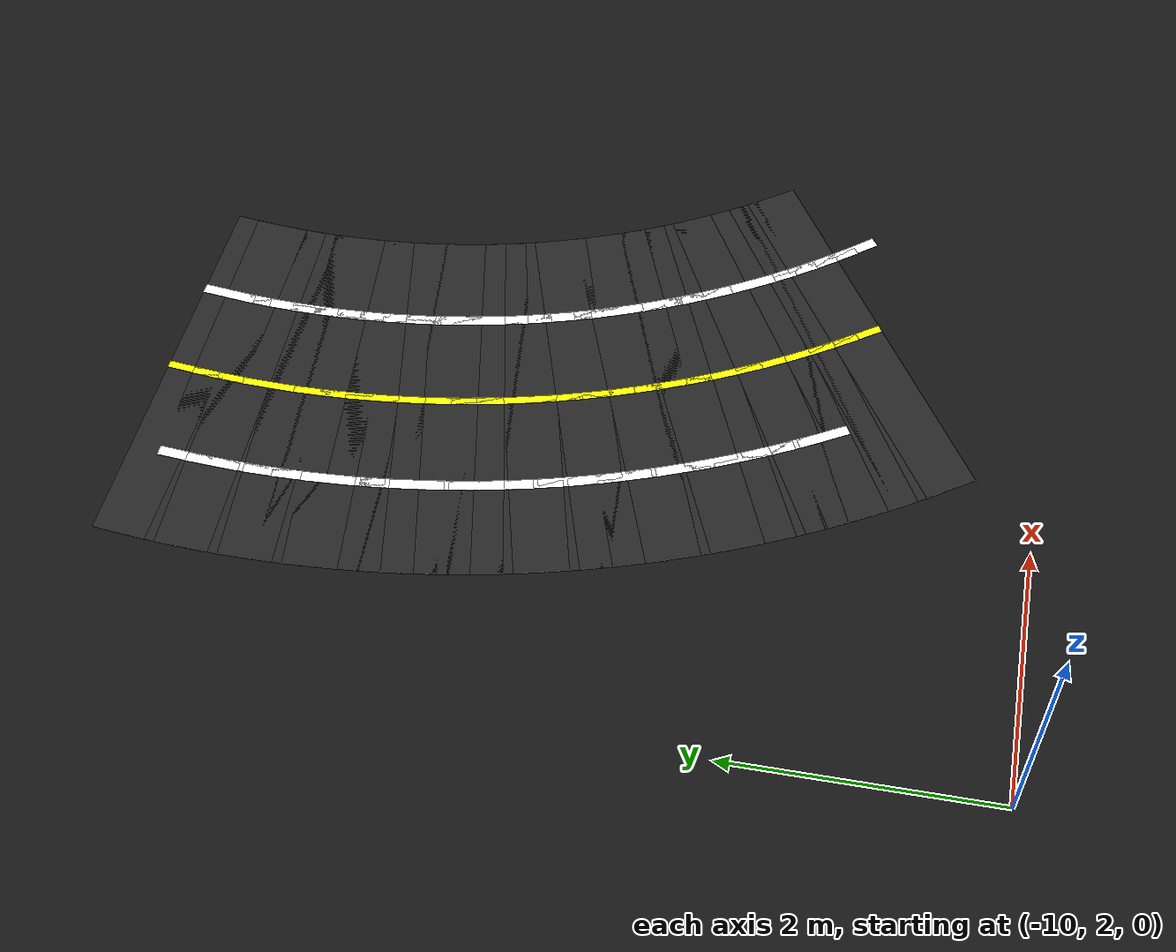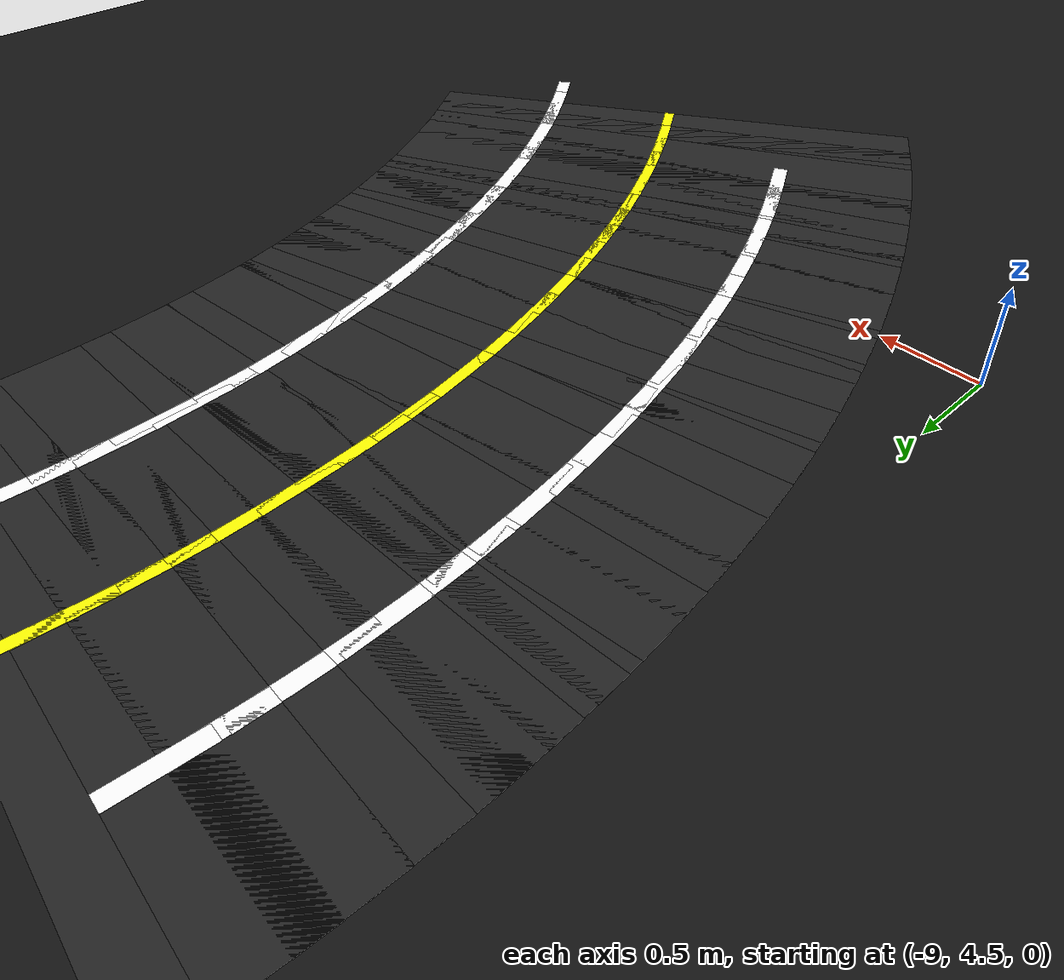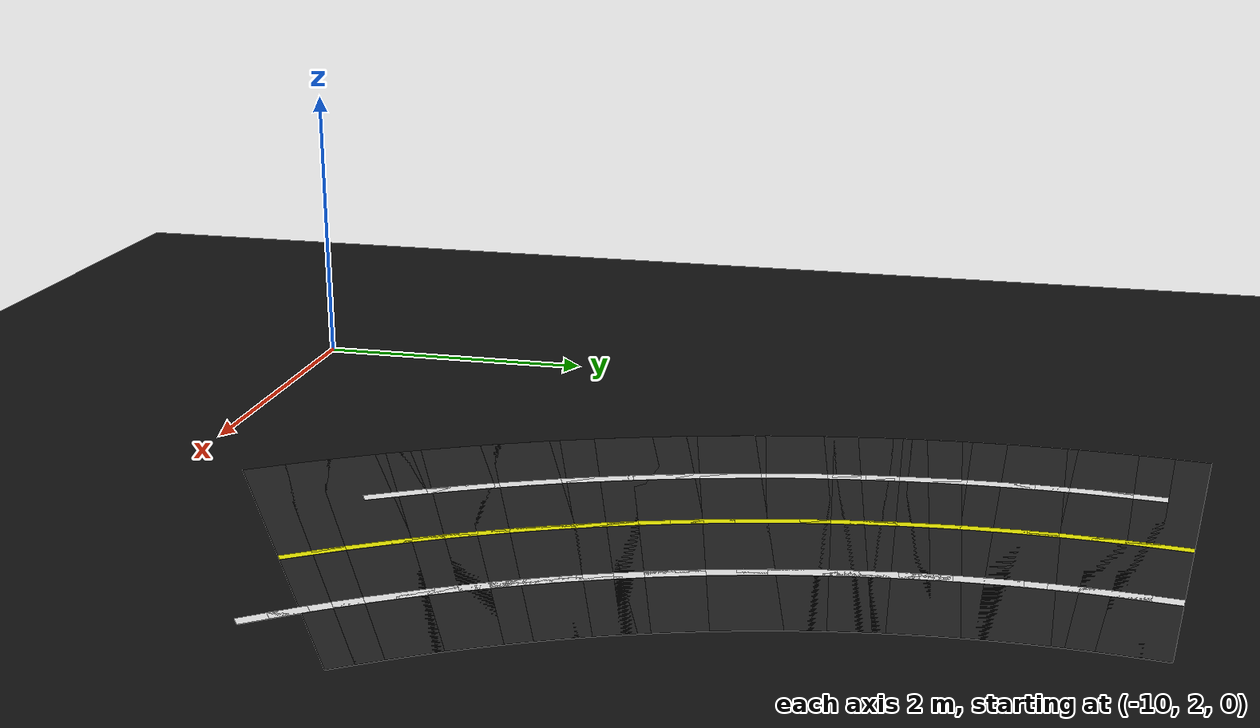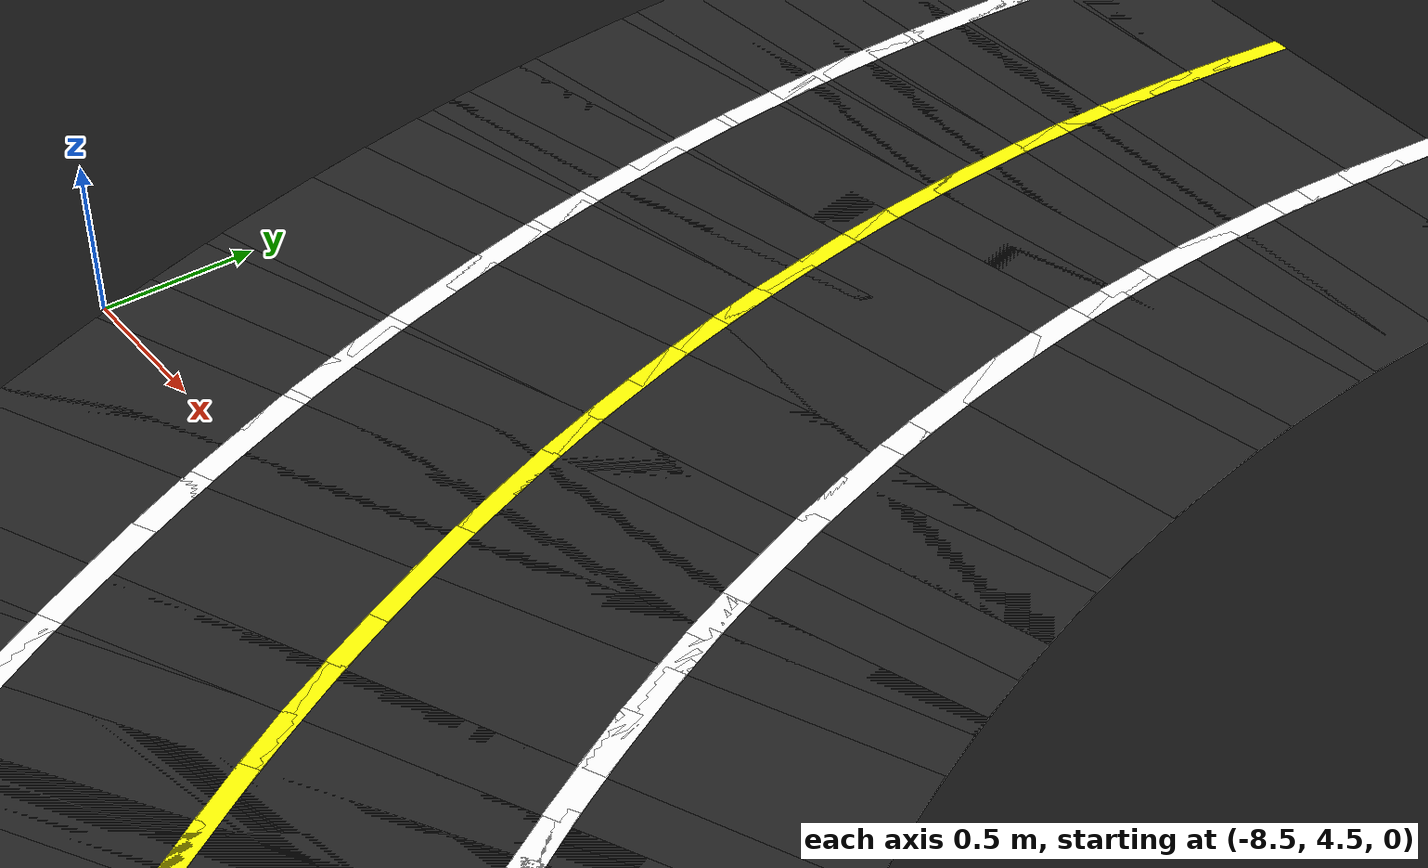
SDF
<sdf version="1.6">
 <world name="figure8_world">
  <model name="ground_plane">
   <static>true</static>
   <link name="link">
    <collision name="collision">
     <geometry><plane><normal>0 0 1</normal><size>120 120</size></plane></geometry>
    </collision>
    <visual name="visual">
     <geometry><plane><normal>0 0 1</normal><size>120 120</size></plane></geometry>
     <material><ambient>0.08 0.08 0.08 1</ambient><diffuse>0.08 0.08 0.08 1</diffuse></material>
    </visual>
   </link>
  </model>
  <model name="seg_00464">
   <static>true</static>
   <pose>-7.4589 8.2840 0.0010 0 0 4.6077</pose>
   <link name="link">
    <collision name="collision"><geometry><box><size>0.4000 3.0000 0.002</size></box></geometry></collision>
    <visual name="visual">
     <geometry><box><size>0.4000 3.0000 0.002</size></box></geometry>
     <material><ambient>0.14 0.14 0.14 1</ambient><diffuse>0.14 0.14 0.14 1</diffuse></material>
    </visual>
   </link>
  </model>
  <model name="seg_00466">
   <static>true</static>
   <pose>-6.7130 8.2056 0.0030 0 0 4.6077</pose>
   <link name="link">
    <collision name="collision"><geometry><box><size>0.4000 0.0800 0.002</size></box></geometry></collision>
    <visual name="visual">
     <geometry><box><size>0.4000 0.0800 0.002</size></box></geometry>
     <material><ambient>1 1 1 1</ambient><diffuse>1 1 1 1</diffuse></material>
    </visual>
   </link>
  </model>
  <model name="seg_00467">
   <static>true</static>
   <pose>-7.4589 8.2840 0.0030 0 0 4.6077</pose>
   <link name="link">
    <collision name="collision"><geometry><box><size>0.4000 0.0600 0.002</size></box></geometry></collision>
    <visual name="visual">
     <geometry><box><size>0.4000 0.0600 0.002</size></box></geometry>
     <material><ambient>1 1 0 1</ambient><diffuse>1 1 0 1</diffuse></material>
    </visual>
   </link>
  </model>
  <model name="seg_00468">
   <static>true</static>
   <pose>-7.4769 8.0884 0.0010 0 0 4.6338</pose>
   <link name="link">
    <collision name="collision"><geometry><box><size>0.4000 3.0000 0.002</size></box></geometry></collision>
    <visual name="visual">
     <geometry><box><size>0.4000 3.0000 0.002</size></box></geometry>
     <material><ambient>0.14 0.14 0.14 1</ambient><diffuse>0.14 0.14 0.14 1</diffuse></material>
    </visual>
   </link>
  </model>
  <model name="seg_00469">
   <static>true</static>
   <pose>-8.2246 8.1473 0.0030 0 0 4.6338</pose>
   <link name="link">
    <collision name="collision"><geometry><box><size>0.4000 0.0800 0.002</size></box></geometry></collision>
    <visual name="visual">
     <geometry><box><size>0.4000 0.0800 0.002</size></box></geometry>
     <material><ambient>1 1 1 1</ambient><diffuse>1 1 1 1</diffuse></material>
    </visual>
   </link>
  </model>
  <model name="seg_00470">
   <static>true</static>
   <pose>-6.7292 8.0296 0.0030 0 0 4.6338</pose>
   <link name="link">
    <collision name="collision"><geometry><box><size>0.4000 0.0800 0.002</size></box></geometry></collision>
    <visual name="visual">
     <geometry><box><size>0.4000 0.0800 0.002</size></box></geometry>
     <material><ambient>1 1 1 1</ambient><diffuse>1 1 1 1</diffuse></material>
    </visual>
   </link>
  </model>
  <model name="seg_00471">
   <static>true</static>
   <pose>-7.4769 8.0884 0.0030 0 0 4.6338</pose>
   <link name="link">
    <collision name="collision"><geometry><box><size>0.4000 0.0600 0.002</size></box></geometry></collision>
    <visual name="visual">
     <geometry><box><size>0.4000 0.0600 0.002</size></box></geometry>
     <material><ambient>1 1 0 1</ambient><diffuse>1 1 0 1</diffuse></material>
    </visual>
   </link>
  </model>
  <model name="seg_00472">
   <static>true</static>
   <pose>-7.4897 7.8925 0.0010 0 0 4.6600</pose>
   <link name="link">
    <collision name="collision"><geometry><box><size>0.4000 3.0000 0.002</size></box></geometry></collision>
    <visual name="visual">
     <geometry><box><size>0.4000 3.0000 0.002</size></box></geometry>
     <material><ambient>0.14 0.14 0.14 1</ambient><diffuse>0.14 0.14 0.14 1</diffuse></material>
    </visual>
   </link>
  </model>
  <model name="seg_00473">
   <static>true</static>
   <pose>-8.2387 7.9318 0.0030 0 0 4.6600</pose>
   <link name="link">
    <collision name="collision"><geometry><box><size>0.4000 0.0800 0.002</size></box></geometry></collision>
    <visual name="visual">
     <geometry><box><size>0.4000 0.0800 0.002</size></box></geometry>
     <material><ambient>1 1 1 1</ambient><diffuse>1 1 1 1</diffuse></material>
    </visual>
   </link>
  </model>
  <model name="seg_00474">
   <static>true</static>
   <pose>-6.7407 7.8533 0.0030 0 0 4.6600</pose>
   <link name="link">
    <collision name="collision"><geometry><box><size>0.4000 0.0800 0.002</size></box></geometry></collision>
    <visual name="visual">
     <geometry><box><size>0.4000 0.0800 0.002</size></box></geometry>
     <material><ambient>1 1 1 1</ambient><diffuse>1 1 1 1</diffuse></material>
    </visual>
   </link>
  </model>
  <model name="seg_00475">
   <static>true</static>
   <pose>-7.4897 7.8925 0.0030 0 0 4.6600</pose>
   <link name="link">
    <collision name="collision"><geometry><box><size>0.4000 0.0600 0.002</size></box></geometry></collision>
    <visual name="visual">
     <geometry><box><size>0.4000 0.0600 0.002</size></box></geometry>
     <material><ambient>1 1 0 1</ambient><diffuse>1 1 0 1</diffuse></material>
    </visual>
   </link>
  </model>
  <model name="seg_00476">
   <static>true</static>
   <pose>-7.4974 7.6963 0.0010 0 0 4.6862</pose>
   <link name="link">
    <collision name="collision"><geometry><box><size>0.4000 3.0000 0.002</size></box></geometry></collision>
    <visual name="visual">
     <geometry><box><size>0.4000 3.0000 0.002</size></box></geometry>
     <material><ambient>0.14 0.14 0.14 1</ambient><diffuse>0.14 0.14 0.14 1</diffuse></material>
    </visual>
   </link>
  </model>
  <model name="seg_00477">
   <static>true</static>
   <pose>-8.2472 7.7160 0.0030 0 0 4.6862</pose>
   <link name="link">
    <collision name="collision"><geometry><box><size>0.4000 0.0800 0.002</size></box></geometry></collision>
    <visual name="visual">
     <geometry><box><size>0.4000 0.0800 0.002</size></box></geometry>
     <material><ambient>1 1 1 1</ambient><diffuse>1 1 1 1</diffuse></material>
    </visual>
   </link>
  </model>
  <model name="seg_00478">
   <static>true</static>
   <pose>-6.7477 7.6767 0.0030 0 0 4.6862</pose>
   <link name="link">
    <collision name="collision"><geometry><box><size>0.4000 0.0800 0.002</size></box></geometry></collision>
    <visual name="visual">
     <geometry><box><size>0.4000 0.0800 0.002</size></box></geometry>
     <material><ambient>1 1 1 1</ambient><diffuse>1 1 1 1</diffuse></material>
    </visual>
   </link>
  </model>
  <model name="seg_00479">
   <static>true</static>
   <pose>-7.4974 7.6963 0.0030 0 0 4.6862</pose>
   <link name="link">
    <collision name="collision"><geometry><box><size>0.4000 0.0600 0.002</size></box></geometry></collision>
    <visual name="visual">
     <geometry><box><size>0.4000 0.0600 0.002</size></box></geometry>
     <material><ambient>1 1 0 1</ambient><diffuse>1 1 0 1</diffuse></material>
    </visual>
   </link>
  </model>
  <model name="seg_00480">
   <static>true</static>
   <pose>-7.5000 7.5000 0.0010 0 0 4.7124</pose>
   <link name="link">
    <collision name="collision"><geometry><box><size>0.4000 3.0000 0.002</size></box></geometry></collision>
    <visual name="visual">
     <geometry><box><size>0.4000 3.0000 0.002</size></box></geometry>
     <material><ambient>0.14 0.14 0.14 1</ambient><diffuse>0.14 0.14 0.14 1</diffuse></material>
    </visual>
   </link>
  </model>
  <model name="seg_00481">
   <static>true</static>
   <pose>-8.2500 7.5000 0.0030 0 0 4.7124</pose>
   <link name="link">
    <collision name="collision"><geometry><box><size>0.4000 0.0800 0.002</size></box></geometry></collision>
    <visual name="visual">
     <geometry><box><size>0.4000 0.0800 0.002</size></box></geometry>
     <material><ambient>1 1 1 1</ambient><diffuse>1 1 1 1</diffuse></material>
    </visual>
   </link>
  </model>
  <model name="seg_00482">
   <static>true</static>
   <pose>-6.7500 7.5000 0.0030 0 0 4.7124</pose>
   <link name="link">
    <collision name="collision"><geometry><box><size>0.4000 0.0800 0.002</size></box></geometry></collision>
    <visual name="visual">
     <geometry><box><size>0.4000 0.0800 0.002</size></box></geometry>
     <material><ambient>1 1 1 1</ambient><diffuse>1 1 1 1</diffuse></material>
    </visual>
   </link>
  </model>
  <model name="seg_00483">
   <static>true</static>
   <pose>-7.5000 7.5000 0.0030 0 0 4.7124</pose>
   <link name="link">
    <collision name="collision"><geometry><box><size>0.4000 0.0600 0.002</size></box></geometry></collision>
    <visual name="visual">
     <geometry><box><size>0.4000 0.0600 0.002</size></box></geometry>
     <material><ambient>1 1 0 1</ambient><diffuse>1 1 0 1</diffuse></material>
    </visual>
   </link>
  </model>
  <model name="seg_00484">
   <static>true</static>
   <pose>-7.4974 7.3037 0.0010 0 0 4.7386</pose>
   <link name="link">
    <collision name="collision"><geometry><box><size>0.4000 3.0000 0.002</size></box></geometry></collision>
    <visual name="visual">
     <geometry><box><size>0.4000 3.0000 0.002</size></box></geometry>
     <material><ambient>0.14 0.14 0.14 1</ambient><diffuse>0.14 0.14 0.14 1</diffuse></material>
    </visual>
   </link>
  </model>
  <model name="seg_00485">
   <static>true</static>
   <pose>-8.2472 7.2840 0.0030 0 0 4.7386</pose>
   <link name="link">
    <collision name="collision"><geometry><box><size>0.4000 0.0800 0.002</size></box></geometry></collision>
    <visual name="visual">
     <geometry><box><size>0.4000 0.0800 0.002</size></box></geometry>
     <material><ambient>1 1 1 1</ambient><diffuse>1 1 1 1</diffuse></material>
    </visual>
   </link>
  </model>
  <model name="seg_00486">
   <static>true</static>
   <pose>-6.7477 7.3233 0.0030 0 0 4.7386</pose>
   <link name="link">
    <collision name="collision"><geometry><box><size>0.4000 0.0800 0.002</size></box></geometry></collision>
    <visual name="visual">
     <geometry><box><size>0.4000 0.0800 0.002</size></box></geometry>
     <material><ambient>1 1 1 1</ambient><diffuse>1 1 1 1</diffuse></material>
    </visual>
   </link>
  </model>
  <model name="seg_00487">
   <static>true</static>
   <pose>-7.4974 7.3037 0.0030 0 0 4.7386</pose>
   <link name="link">
    <collision name="collision"><geometry><box><size>0.4000 0.0600 0.002</size></box></geometry></collision>
    <visual name="visual">
     <geometry><box><size>0.4000 0.0600 0.002</size></box></geometry>
     <material><ambient>1 1 0 1</ambient><diffuse>1 1 0 1</diffuse></material>
    </visual>
   </link>
  </model>
  <model name="seg_00488">
   <static>true</static>
   <pose>-7.4897 7.1075 0.0010 0 0 4.7647</pose>
   <link name="link">
    <collision name="collision"><geometry><box><size>0.4000 3.0000 0.002</size></box></geometry></collision>
    <visual name="visual">
     <geometry><box><size>0.4000 3.0000 0.002</size></box></geometry>
     <material><ambient>0.14 0.14 0.14 1</ambient><diffuse>0.14 0.14 0.14 1</diffuse></material>
    </visual>
   </link>
  </model>
  <model name="seg_00489">
   <static>true</static>
   <pose>-8.2387 7.0682 0.0030 0 0 4.7647</pose>
   <link name="link">
    <collision name="collision"><geometry><box><size>0.4000 0.0800 0.002</size></box></geometry></collision>
    <visual name="visual">
     <geometry><box><size>0.4000 0.0800 0.002</size></box></geometry>
     <material><ambient>1 1 1 1</ambient><diffuse>1 1 1 1</diffuse></material>
    </visual>
   </link>
  </model>
  <model name="seg_00490">
   <static>true</static>
   <pose>-6.7407 7.1467 0.0030 0 0 4.7647</pose>
   <link name="link">
    <collision name="collision"><geometry><box><size>0.4000 0.0800 0.002</size></box></geometry></collision>
    <visual name="visual">
     <geometry><box><size>0.4000 0.0800 0.002</size></box></geometry>
     <material><ambient>1 1 1 1</ambient><diffuse>1 1 1 1</diffuse></material>
    </visual>
   </link>
  </model>
  <model name="seg_00491">
   <static>true</static>
   <pose>-7.4897 7.1075 0.0030 0 0 4.7647</pose>
   <link name="link">
    <collision name="collision"><geometry><box><size>0.4000 0.0600 0.002</size></box></geometry></collision>
    <visual name="visual">
     <geometry><box><size>0.4000 0.0600 0.002</size></box></geometry>
     <material><ambient>1 1 0 1</ambient><diffuse>1 1 0 1</diffuse></material>
    </visual>
   </link>
  </model>
  <model name="seg_00492">
   <static>true</static>
   <pose>-7.4769 6.9116 0.0010 0 0 4.7909</pose>
   <link name="link">
    <collision name="collision"><geometry><box><size>0.4000 3.0000 0.002</size></box></geometry></collision>
    <visual name="visual">
     <geometry><box><size>0.4000 3.0000 0.002</size></box></geometry>
     <material><ambient>0.14 0.14 0.14 1</ambient><diffuse>0.14 0.14 0.14 1</diffuse></material>
    </visual>
   </link>
  </model>
  <model name="seg_00493">
   <static>true</static>
   <pose>-8.2246 6.8527 0.0030 0 0 4.7909</pose>
   <link name="link">
    <collision name="collision"><geometry><box><size>0.4000 0.0800 0.002</size></box></geometry></collision>
    <visual name="visual">
     <geometry><box><size>0.4000 0.0800 0.002</size></box></geometry>
     <material><ambient>1 1 1 1</ambient><diffuse>1 1 1 1</diffuse></material>
    </visual>
   </link>
  </model>
  <model name="seg_00494">
   <static>true</static>
   <pose>-6.7292 6.9704 0.0030 0 0 4.7909</pose>
   <link name="link">
    <collision name="collision"><geometry><box><size>0.4000 0.0800 0.002</size></box></geometry></collision>
    <visual name="visual">
     <geometry><box><size>0.4000 0.0800 0.002</size></box></geometry>
     <material><ambient>1 1 1 1</ambient><diffuse>1 1 1 1</diffuse></material>
    </visual>
   </link>
  </model>
  <model name="seg_00495">
   <static>true</static>
   <pose>-7.4769 6.9116 0.0030 0 0 4.7909</pose>
   <link name="link">
    <collision name="collision"><geometry><box><size>0.4000 0.0600 0.002</size></box></geometry></collision>
    <visual name="visual">
     <geometry><box><size>0.4000 0.0600 0.002</size></box></geometry>
     <material><ambient>1 1 0 1</ambient><diffuse>1 1 0 1</diffuse></material>
    </visual>
   </link>
  </model>
  <model name="seg_00496">
   <static>true</static>
   <pose>-7.4589 6.7160 0.0010 0 0 4.8171</pose>
   <link name="link">
    <collision name="collision"><geometry><box><size>0.4000 3.0000 0.002</size></box></geometry></collision>
    <visual name="visual">
     <geometry><box><size>0.4000 3.0000 0.002</size></box></geometry>
     <material><ambient>0.14 0.14 0.14 1</ambient><diffuse>0.14 0.14 0.14 1</diffuse></material>
    </visual>
   </link>
  </model>
  <model name="seg_00497">
   <static>true</static>
   <pose>-8.2048 6.6376 0.0030 0 0 4.8171</pose>
   <link name="link">
    <collision name="collision"><geometry><box><size>0.4000 0.0800 0.002</size></box></geometry></collision>
    <visual name="visual">
     <geometry><box><size>0.4000 0.0800 0.002</size></box></geometry>
     <material><ambient>1 1 1 1</ambient><diffuse>1 1 1 1</diffuse></material>
    </visual>
   </link>
  </model>
  <model name="seg_00498">
   <static>true</static>
   <pose>-6.7130 6.7944 0.0030 0 0 4.8171</pose>
   <link name="link">
    <collision name="collision"><geometry><box><size>0.4000 0.0800 0.002</size></box></geometry></collision>
    <visual name="visual">
     <geometry><box><size>0.4000 0.0800 0.002</size></box></geometry>
     <material><ambient>1 1 1 1</ambient><diffuse>1 1 1 1</diffuse></material>
    </visual>
   </link>
  </model>
  <model name="seg_00499">
   <static>true</static>
   <pose>-7.4589 6.7160 0.0030 0 0 4.8171</pose>
   <link name="link">
    <collision name="collision"><geometry><box><size>0.4000 0.0600 0.002</size></box></geometry></collision>
    <visual name="visual">
     <geometry><box><size>0.4000 0.0600 0.002</size></box></geometry>
     <material><ambient>1 1 0 1</ambient><diffuse>1 1 0 1</diffuse></material>
    </visual>
   </link>
  </model>
  <model name="seg_00500">
   <static>true</static>
   <pose>-7.4358 6.5211 0.0010 0 0 4.8433</pose>
   <link name="link">
    <collision name="collision"><geometry><box><size>0.4000 3.0000 0.002</size></box></geometry></collision>
    <visual name="visual">
     <geometry><box><size>0.4000 3.0000 0.002</size></box></geometry>
     <material><ambient>0.14 0.14 0.14 1</ambient><diffuse>0.14 0.14 0.14 1</diffuse></material>
    </visual>
   </link>
  </model>
  <model name="seg_00501">
   <static>true</static>
   <pose>-8.1794 6.4232 0.0030 0 0 4.8433</pose>
   <link name="link">
    <collision name="collision"><geometry><box><size>0.4000 0.0800 0.002</size></box></geometry></collision>
    <visual name="visual">
     <geometry><box><size>0.4000 0.0800 0.002</size></box></geometry>
     <material><ambient>1 1 1 1</ambient><diffuse>1 1 1 1</diffuse></material>
    </visual>
   </link>
  </model>
  <model name="seg_00502">
   <static>true</static>
   <pose>-6.6923 6.6189 0.0030 0 0 4.8433</pose>
   <link name="link">
    <collision name="collision"><geometry><box><size>0.4000 0.0800 0.002</size></box></geometry></collision>
    <visual name="visual">
     <geometry><box><size>0.4000 0.0800 0.002</size></box></geometry>
     <material><ambient>1 1 1 1</ambient><diffuse>1 1 1 1</diffuse></material>
    </visual>
   </link>
  </model>
  <model name="seg_00503">
   <static>true</static>
   <pose>-7.4358 6.5211 0.0030 0 0 4.8433</pose>
   <link name="link">
    <collision name="collision"><geometry><box><size>0.4000 0.0600 0.002</size></box></geometry></collision>
    <visual name="visual">
     <geometry><box><size>0.4000 0.0600 0.002</size></box></geometry>
     <material><ambient>1 1 0 1</ambient><diffuse>1 1 0 1</diffuse></material>
    </visual>
   </link>
  </model>
  <model name="seg_00504">
   <static>true</static>
   <pose>-7.4077 6.3267 0.0010 0 0 4.8695</pose>
   <link name="link">
    <collision name="collision"><geometry><box><size>0.4000 3.0000 0.002</size></box></geometry></collision>
    <visual name="visual">
     <geometry><box><size>0.4000 3.0000 0.002</size></box></geometry>
     <material><ambient>0.14 0.14 0.14 1</ambient><diffuse>0.14 0.14 0.14 1</diffuse></material>
    </visual>
   </link>
  </model>
  <model name="seg_00505">
   <static>true</static>
   <pose>-8.1484 6.2094 0.0030 0 0 4.8695</pose>
   <link name="link">
    <collision name="collision"><geometry><box><size>0.4000 0.0800 0.002</size></box></geometry></collision>
    <visual name="visual">
     <geometry><box><size>0.4000 0.0800 0.002</size></box></geometry>
     <material><ambient>1 1 1 1</ambient><diffuse>1 1 1 1</diffuse></material>
    </visual>
   </link>
  </model>
  <model name="seg_00506">
   <static>true</static>
   <pose>-6.6669 6.4441 0.0030 0 0 4.8695</pose>
   <link name="link">
    <collision name="collision"><geometry><box><size>0.4000 0.0800 0.002</size></box></geometry></collision>
    <visual name="visual">
     <geometry><box><size>0.4000 0.0800 0.002</size></box></geometry>
     <material><ambient>1 1 1 1</ambient><diffuse>1 1 1 1</diffuse></material>
    </visual>
   </link>
  </model>
  <model name="seg_00507">
   <static>true</static>
   <pose>-7.4077 6.3267 0.0030 0 0 4.8695</pose>
   <link name="link">
    <collision name="collision"><geometry><box><size>0.4000 0.0600 0.002</size></box></geometry></collision>
    <visual name="visual">
     <geometry><box><size>0.4000 0.0600 0.002</size></box></geometry>
     <material><ambient>1 1 0 1</ambient><diffuse>1 1 0 1</diffuse></material>
    </visual>
   </link>
  </model>
  <model name="seg_00508">
   <static>true</static>
   <pose>-7.3744 6.1332 0.0010 0 0 4.8956</pose>
   <link name="link">
    <collision name="collision"><geometry><box><size>0.4000 3.0000 0.002</size></box></geometry></collision>
    <visual name="visual">
     <geometry><box><size>0.4000 3.0000 0.002</size></box></geometry>
     <material><ambient>0.14 0.14 0.14 1</ambient><diffuse>0.14 0.14 0.14 1</diffuse></material>
    </visual>
   </link>
  </model>
  <model name="seg_00509">
   <static>true</static>
   <pose>-8.1119 5.9966 0.0030 0 0 4.8956</pose>
   <link name="link">
    <collision name="collision"><geometry><box><size>0.4000 0.0800 0.002</size></box></geometry></collision>
    <visual name="visual">
     <geometry><box><size>0.4000 0.0800 0.002</size></box></geometry>
     <material><ambient>1 1 1 1</ambient><diffuse>1 1 1 1</diffuse></material>
    </visual>
   </link>
  </model>
  <model name="seg_00510">
   <static>true</static>
   <pose>-6.6370 6.2699 0.0030 0 0 4.8956</pose>
   <link name="link">
    <collision name="collision"><geometry><box><size>0.4000 0.0800 0.002</size></box></geometry></collision>
    <visual name="visual">
     <geometry><box><size>0.4000 0.0800 0.002</size></box></geometry>
     <material><ambient>1 1 1 1</ambient><diffuse>1 1 1 1</diffuse></material>
    </visual>
   </link>
  </model>
  <model name="seg_00511">
   <static>true</static>
   <pose>-7.3744 6.1332 0.0030 0 0 4.8956</pose>
   <link name="link">
    <collision name="collision"><geometry><box><size>0.4000 0.0600 0.002</size></box></geometry></collision>
    <visual name="visual">
     <geometry><box><size>0.4000 0.0600 0.002</size></box></geometry>
     <material><ambient>1 1 0 1</ambient><diffuse>1 1 0 1</diffuse></material>
    </visual>
   </link>
  </model>
  <model name="seg_00512">
   <static>true</static>
   <pose>-7.3361 5.9407 0.0010 0 0 4.9218</pose>
   <link name="link">
    <collision name="collision"><geometry><box><size>0.4000 3.0000 0.002</size></box></geometry></collision>
    <visual name="visual">
     <geometry><box><size>0.4000 3.0000 0.002</size></box></geometry>
     <material><ambient>0.14 0.14 0.14 1</ambient><diffuse>0.14 0.14 0.14 1</diffuse></material>
    </visual>
   </link>
  </model>
  <model name="seg_00513">
   <static>true</static>
   <pose>-8.0697 5.7847 0.0030 0 0 4.9218</pose>
   <link name="link">
    <collision name="collision"><geometry><box><size>0.4000 0.0800 0.002</size></box></geometry></collision>
    <visual name="visual">
     <geometry><box><size>0.4000 0.0800 0.002</size></box></geometry>
     <material><ambient>1 1 1 1</ambient><diffuse>1 1 1 1</diffuse></material>
    </visual>
   </link>
  </model>
  <model name="seg_00514">
   <static>true</static>
   <pose>-6.6025 6.0966 0.0030 0 0 4.9218</pose>
   <link name="link">
    <collision name="collision"><geometry><box><size>0.4000 0.0800 0.002</size></box></geometry></collision>
    <visual name="visual">
     <geometry><box><size>0.4000 0.0800 0.002</size></box></geometry>
     <material><ambient>1 1 1 1</ambient><diffuse>1 1 1 1</diffuse></material>
    </visual>
   </link>
  </model>
  <model name="seg_00515">
   <static>true</static>
   <pose>-7.3361 5.9407 0.0030 0 0 4.9218</pose>
   <link name="link">
    <collision name="collision"><geometry><box><size>0.4000 0.0600 0.002</size></box></geometry></collision>
    <visual name="visual">
     <geometry><box><size>0.4000 0.0600 0.002</size></box></geometry>
     <material><ambient>1 1 0 1</ambient><diffuse>1 1 0 1</diffuse></material>
    </visual>
   </link>
  </model>
  <model name="seg_00516">
   <static>true</static>
   <pose>-7.2928 5.7492 0.0010 0 0 4.9480</pose>
   <link name="link">
    <collision name="collision"><geometry><box><size>0.4000 3.0000 0.002</size></box></geometry></collision>
    <visual name="visual">
     <geometry><box><size>0.4000 3.0000 0.002</size></box></geometry>
     <material><ambient>0.14 0.14 0.14 1</ambient><diffuse>0.14 0.14 0.14 1</diffuse></material>
    </visual>
   </link>
  </model>
  <model name="seg_00517">
   <static>true</static>
   <pose>-8.0221 5.5741 0.0030 0 0 4.9480</pose>
   <link name="link">
    <collision name="collision"><geometry><box><size>0.4000 0.0800 0.002</size></box></geometry></collision>
    <visual name="visual">
     <geometry><box><size>0.4000 0.0800 0.002</size></box></geometry>
     <material><ambient>1 1 1 1</ambient><diffuse>1 1 1 1</diffuse></material>
    </visual>
   </link>
  </model>
  <model name="seg_00518">
   <static>true</static>
   <pose>-6.5635 5.9242 0.0030 0 0 4.9480</pose>
   <link name="link">
    <collision name="collision"><geometry><box><size>0.4000 0.0800 0.002</size></box></geometry></collision>
    <visual name="visual">
     <geometry><box><size>0.4000 0.0800 0.002</size></box></geometry>
     <material><ambient>1 1 1 1</ambient><diffuse>1 1 1 1</diffuse></material>
    </visual>
   </link>
  </model>
  <model name="seg_00519">
   <static>true</static>
   <pose>-7.2928 5.7492 0.0030 0 0 4.9480</pose>
   <link name="link">
    <collision name="collision"><geometry><box><size>0.4000 0.0600 0.002</size></box></geometry></collision>
    <visual name="visual">
     <geometry><box><size>0.4000 0.0600 0.002</size></box></geometry>
     <material><ambient>1 1 0 1</ambient><diffuse>1 1 0 1</diffuse></material>
    </visual>
   </link>
  </model>
  <model name="seg_00520">
   <static>true</static>
   <pose>-7.2444 5.5589 0.0010 0 0 4.9742</pose>
   <link name="link">
    <collision name="collision"><geometry><box><size>0.4000 3.0000 0.002</size></box></geometry></collision>
    <visual name="visual">
     <geometry><box><size>0.4000 3.0000 0.002</size></box></geometry>
     <material><ambient>0.14 0.14 0.14 1</ambient><diffuse>0.14 0.14 0.14 1</diffuse></material>
    </visual>
   </link>
  </model>
  <model name="seg_00521">
   <static>true</static>
   <pose>-7.9689 5.3647 0.0030 0 0 4.9742</pose>
   <link name="link">
    <collision name="collision"><geometry><box><size>0.4000 0.0800 0.002</size></box></geometry></collision>
    <visual name="visual">
     <geometry><box><size>0.4000 0.0800 0.002</size></box></geometry>
     <material><ambient>1 1 1 1</ambient><diffuse>1 1 1 1</diffuse></material>
    </visual>
   </link>
  </model>
  <model name="seg_00522">
   <static>true</static>
   <pose>-6.5200 5.7530 0.0030 0 0 4.9742</pose>
   <link name="link">
    <collision name="collision"><geometry><box><size>0.4000 0.0800 0.002</size></box></geometry></collision>
    <visual name="visual">
     <geometry><box><size>0.4000 0.0800 0.002</size></box></geometry>
     <material><ambient>1 1 1 1</ambient><diffuse>1 1 1 1</diffuse></material>
    </visual>
   </link>
  </model>
  <model name="seg_00523">
   <static>true</static>
   <pose>-7.2444 5.5589 0.0030 0 0 4.9742</pose>
   <link name="link">
    <collision name="collision"><geometry><box><size>0.4000 0.0600 0.002</size></box></geometry></collision>
    <visual name="visual">
     <geometry><box><size>0.4000 0.0600 0.002</size></box></geometry>
     <material><ambient>1 1 0 1</ambient><diffuse>1 1 0 1</diffuse></material>
    </visual>
   </link>
  </model>
  <model name="seg_00524">
   <static>true</static>
   <pose>-7.1911 5.3699 0.0010 0 0 5.0004</pose>
   <link name="link">
    <collision name="collision"><geometry><box><size>0.4000 3.0000 0.002</size></box></geometry></collision>
    <visual name="visual">
     <geometry><box><size>0.4000 3.0000 0.002</size></box></geometry>
     <material><ambient>0.14 0.14 0.14 1</ambient><diffuse>0.14 0.14 0.14 1</diffuse></material>
    </visual>
   </link>
  </model>
  <model name="seg_00525">
   <static>true</static>
   <pose>-7.9103 5.1569 0.0030 0 0 5.0004</pose>
   <link name="link">
    <collision name="collision"><geometry><box><size>0.4000 0.0800 0.002</size></box></geometry></collision>
    <visual name="visual">
     <geometry><box><size>0.4000 0.0800 0.002</size></box></geometry>
     <material><ambient>1 1 1 1</ambient><diffuse>1 1 1 1</diffuse></material>
    </visual>
   </link>
  </model>
  <model name="seg_00526">
   <static>true</static>
   <pose>-6.4720 5.5829 0.0030 0 0 5.0004</pose>
   <link name="link">
    <collision name="collision"><geometry><box><size>0.4000 0.0800 0.002</size></box></geometry></collision>
    <visual name="visual">
     <geometry><box><size>0.4000 0.0800 0.002</size></box></geometry>
     <material><ambient>1 1 1 1</ambient><diffuse>1 1 1 1</diffuse></material>
    </visual>
   </link>
  </model>
  <model name="seg_00527">
   <static>true</static>
   <pose>-7.1911 5.3699 0.0030 0 0 5.0004</pose>
   <link name="link">
    <collision name="collision"><geometry><box><size>0.4000 0.0600 0.002</size></box></geometry></collision>
    <visual name="visual">
     <geometry><box><size>0.4000 0.0600 0.002</size></box></geometry>
     <material><ambient>1 1 0 1</ambient><diffuse>1 1 0 1</diffuse></material>
    </visual>
   </link>
  </model>
  <model name="seg_00528">
   <static>true</static>
   <pose>-7.1329 5.1824 0.0010 0 0 5.0265</pose>
   <link name="link">
    <collision name="collision"><geometry><box><size>0.4000 3.0000 0.002</size></box></geometry></collision>
    <visual name="visual">
     <geometry><box><size>0.4000 3.0000 0.002</size></box></geometry>
     <material><ambient>0.14 0.14 0.14 1</ambient><diffuse>0.14 0.14 0.14 1</diffuse></material>
    </visual>
   </link>
  </model>
  <model name="seg_00529">
   <static>true</static>
   <pose>-7.8462 4.9506 0.0030 0 0 5.0265</pose>
   <link name="link">
    <collision name="collision"><geometry><box><size>0.4000 0.0800 0.002</size></box></geometry></collision>
    <visual name="visual">
     <geometry><box><size>0.4000 0.0800 0.002</size></box></geometry>
     <material><ambient>1 1 1 1</ambient><diffuse>1 1 1 1</diffuse></material>
    </visual>
   </link>
  </model>
  <model name="seg_00530">
   <static>true</static>
   <pose>-6.4196 5.4141 0.0030 0 0 5.0265</pose>
   <link name="link">
    <collision name="collision"><geometry><box><size>0.4000 0.0800 0.002</size></box></geometry></collision>
    <visual name="visual">
     <geometry><box><size>0.4000 0.0800 0.002</size></box></geometry>
     <material><ambient>1 1 1 1</ambient><diffuse>1 1 1 1</diffuse></material>
    </visual>
   </link>
  </model>
  <model name="seg_00531">
   <static>true</static>
   <pose>-7.1329 5.1824 0.0030 0 0 5.0265</pose>
   <link name="link">
    <collision name="collision"><geometry><box><size>0.4000 0.0600 0.002</size></box></geometry></collision>
    <visual name="visual">
     <geometry><box><size>0.4000 0.0600 0.002</size></box></geometry>
     <material><ambient>1 1 0 1</ambient><diffuse>1 1 0 1</diffuse></material>
    </visual>
   </link>
  </model>
  <model name="seg_00532">
   <static>true</static>
   <pose>-7.0698 4.9964 0.0010 0 0 5.0527</pose>
   <link name="link">
    <collision name="collision"><geometry><box><size>0.4000 3.0000 0.002</size></box></geometry></collision>
    <visual name="visual">
     <geometry><box><size>0.4000 3.0000 0.002</size></box></geometry>
     <material><ambient>0.14 0.14 0.14 1</ambient><diffuse>0.14 0.14 0.14 1</diffuse></material>
    </visual>
   </link>
  </model>
  <model name="seg_00533">
   <static>true</static>
   <pose>-7.7768 4.7461 0.0030 0 0 5.0527</pose>
   <link name="link">
    <collision name="collision"><geometry><box><size>0.4000 0.0800 0.002</size></box></geometry></collision>
    <visual name="visual">
     <geometry><box><size>0.4000 0.0800 0.002</size></box></geometry>
     <material><ambient>1 1 1 1</ambient><diffuse>1 1 1 1</diffuse></material>
    </visual>
   </link>
  </model>
  <model name="seg_00534">
   <static>true</static>
   <pose>-6.3628 5.2468 0.0030 0 0 5.0527</pose>
   <link name="link">
    <collision name="collision"><geometry><box><size>0.4000 0.0800 0.002</size></box></geometry></collision>
    <visual name="visual">
     <geometry><box><size>0.4000 0.0800 0.002</size></box></geometry>
     <material><ambient>1 1 1 1</ambient><diffuse>1 1 1 1</diffuse></material>
    </visual>
   </link>
  </model>
  <model name="seg_00535">
   <static>true</static>
   <pose>-7.0698 4.9964 0.0030 0 0 5.0527</pose>
   <link name="link">
    <collision name="collision"><geometry><box><size>0.4000 0.0600 0.002</size></box></geometry></collision>
    <visual name="visual">
     <geometry><box><size>0.4000 0.0600 0.002</size></box></geometry>
     <material><ambient>1 1 0 1</ambient><diffuse>1 1 0 1</diffuse></material>
    </visual>
   </link>
  </model>
  <model name="seg_00536">
   <static>true</static>
   <pose>-7.0019 4.8122 0.0010 0 0 5.0789</pose>
   <link name="link">
    <collision name="collision"><geometry><box><size>0.4000 3.0000 0.002</size></box></geometry></collision>
    <visual name="visual">
     <geometry><box><size>0.4000 3.0000 0.002</size></box></geometry>
     <material><ambient>0.14 0.14 0.14 1</ambient><diffuse>0.14 0.14 0.14 1</diffuse></material>
    </visual>
   </link>
  </model>
  <model name="seg_00537">
   <static>true</static>
   <pose>-7.7020 4.5435 0.0030 0 0 5.0789</pose>
   <link name="link">
    <collision name="collision"><geometry><box><size>0.4000 0.0800 0.002</size></box></geometry></collision>
    <visual name="visual">
     <geometry><box><size>0.4000 0.0800 0.002</size></box></geometry>
     <material><ambient>1 1 1 1</ambient><diffuse>1 1 1 1</diffuse></material>
    </visual>
   </link>
  </model>
  <model name="seg_00538">
   <static>true</static>
   <pose>-6.3017 5.0810 0.0030 0 0 5.0789</pose>
   <link name="link">
    <collision name="collision"><geometry><box><size>0.4000 0.0800 0.002</size></box></geometry></collision>
    <visual name="visual">
     <geometry><box><size>0.4000 0.0800 0.002</size></box></geometry>
     <material><ambient>1 1 1 1</ambient><diffuse>1 1 1 1</diffuse></material>
    </visual>
   </link>
  </model>
  <model name="seg_00539">
   <static>true</static>
   <pose>-7.0019 4.8122 0.0030 0 0 5.0789</pose>
   <link name="link">
    <collision name="collision"><geometry><box><size>0.4000 0.0600 0.002</size></box></geometry></collision>
    <visual name="visual">
     <geometry><box><size>0.4000 0.0600 0.002</size></box></geometry>
     <material><ambient>1 1 0 1</ambient><diffuse>1 1 0 1</diffuse></material>
    </visual>
   </link>
  </model>
  <model name="seg_00540">
   <static>true</static>
   <pose>-6.9291 4.6299 0.0010 0 0 5.1051</pose>
   <link name="link">
    <collision name="collision"><geometry><box><size>0.4000 3.0000 0.002</size></box></geometry></collision>
    <visual name="visual">
     <geometry><box><size>0.4000 3.0000 0.002</size></box></geometry>
     <material><ambient>0.14 0.14 0.14 1</ambient><diffuse>0.14 0.14 0.14 1</diffuse></material>
    </visual>
   </link>
  </model>
  <model name="seg_00541">
   <static>true</static>
   <pose>-7.6220 4.3429 0.0030 0 0 5.1051</pose>
   <link name="link">
    <collision name="collision"><geometry><box><size>0.4000 0.0800 0.002</size></box></geometry></collision>
    <visual name="visual">
     <geometry><box><size>0.4000 0.0800 0.002</size></box></geometry>
     <material><ambient>1 1 1 1</ambient><diffuse>1 1 1 1</diffuse></material>
    </visual>
   </link>
  </model>
  <model name="seg_00542">
   <static>true</static>
   <pose>-6.2362 4.9169 0.0030 0 0 5.1051</pose>
   <link name="link">
    <collision name="collision"><geometry><box><size>0.4000 0.0800 0.002</size></box></geometry></collision>
    <visual name="visual">
     <geometry><box><size>0.4000 0.0800 0.002</size></box></geometry>
     <material><ambient>1 1 1 1</ambient><diffuse>1 1 1 1</diffuse></material>
    </visual>
   </link>
  </model>
  <model name="seg_00543">
   <static>true</static>
   <pose>-6.9291 4.6299 0.0030 0 0 5.1051</pose>
   <link name="link">
    <collision name="collision"><geometry><box><size>0.4000 0.0600 0.002</size></box></geometry></collision>
    <visual name="visual">
     <geometry><box><size>0.4000 0.0600 0.002</size></box></geometry>
     <material><ambient>1 1 0 1</ambient><diffuse>1 1 0 1</diffuse></material>
    </visual>
   </link>
  </model>
  <model name="seg_00544">
   <static>true</static>
   <pose>-6.8516 4.4495 0.0010 0 0 5.1313</pose>
   <link name="link">
    <collision name="collision"><geometry><box><size>0.4000 3.0000 0.002</size></box></geometry></collision>
    <visual name="visual">
     <geometry><box><size>0.4000 3.0000 0.002</size></box></geometry>
     <material><ambient>0.14 0.14 0.14 1</ambient><diffuse>0.14 0.14 0.14 1</diffuse></material>
    </visual>
   </link>
  </model>
  <model name="seg_00545">
   <static>true</static>
   <pose>-7.5368 4.1444 0.0030 0 0 5.1313</pose>
   <link name="link">
    <collision name="collision"><geometry><box><size>0.4000 0.0800 0.002</size></box></geometry></collision>
    <visual name="visual">
     <geometry><box><size>0.4000 0.0800 0.002</size></box></geometry>
     <material><ambient>1 1 1 1</ambient><diffuse>1 1 1 1</diffuse></material>
    </visual>
   </link>
  </model>
  <model name="seg_00546">
   <static>true</static>
   <pose>-6.1664 4.7545 0.0030 0 0 5.1313</pose>
   <link name="link">
    <collision name="collision"><geometry><box><size>0.4000 0.0800 0.002</size></box></geometry></collision>
    <visual name="visual">
     <geometry><box><size>0.4000 0.0800 0.002</size></box></geometry>
     <material><ambient>1 1 1 1</ambient><diffuse>1 1 1 1</diffuse></material>
    </visual>
   </link>
  </model>
  <model name="seg_00547">
   <static>true</static>
   <pose>-6.8516 4.4495 0.0030 0 0 5.1313</pose>
   <link name="link">
    <collision name="collision"><geometry><box><size>0.4000 0.0600 0.002</size></box></geometry></collision>
    <visual name="visual">
     <geometry><box><size>0.4000 0.0600 0.002</size></box></geometry>
     <material><ambient>1 1 0 1</ambient><diffuse>1 1 0 1</diffuse></material>
    </visual>
   </link>
  </model>
  <model name="seg_00548">
   <static>true</static>
   <pose>-6.7694 4.2712 0.0010 0 0 5.1574</pose>
   <link name="link">
    <collision name="collision"><geometry><box><size>0.4000 3.0000 0.002</size></box></geometry></collision>
    <visual name="visual">
     <geometry><box><size>0.4000 3.0000 0.002</size></box></geometry>
     <material><ambient>0.14 0.14 0.14 1</ambient><diffuse>0.14 0.14 0.14 1</diffuse></material>
    </visual>
   </link>
  </model>
  <model name="seg_00549">
   <static>true</static>
   <pose>-7.4463 3.9483 0.0030 0 0 5.1574</pose>
   <link name="link">
    <collision name="collision"><geometry><box><size>0.4000 0.0800 0.002</size></box></geometry></collision>
    <visual name="visual">
     <geometry><box><size>0.4000 0.0800 0.002</size></box></geometry>
     <material><ambient>1 1 1 1</ambient><diffuse>1 1 1 1</diffuse></material>
    </visual>
   </link>
  </model>
  <model name="seg_00550">
   <static>true</static>
   <pose>-6.0925 4.5941 0.0030 0 0 5.1574</pose>
   <link name="link">
    <collision name="collision"><geometry><box><size>0.4000 0.0800 0.002</size></box></geometry></collision>
    <visual name="visual">
     <geometry><box><size>0.4000 0.0800 0.002</size></box></geometry>
     <material><ambient>1 1 1 1</ambient><diffuse>1 1 1 1</diffuse></material>
    </visual>
   </link>
  </model>
  <model name="seg_00551">
   <static>true</static>
   <pose>-6.7694 4.2712 0.0030 0 0 5.1574</pose>
   <link name="link">
    <collision name="collision"><geometry><box><size>0.4000 0.0600 0.002</size></box></geometry></collision>
    <visual name="visual">
     <geometry><box><size>0.4000 0.0600 0.002</size></box></geometry>
     <material><ambient>1 1 0 1</ambient><diffuse>1 1 0 1</diffuse></material>
    </visual>
   </link>
  </model>
  <model name="seg_00552">
   <static>true</static>
   <pose>-6.6825 4.0951 0.0010 0 0 5.1836</pose>
   <link name="link">
    <collision name="collision"><geometry><box><size>0.4000 3.0000 0.002</size></box></geometry></collision>
    <visual name="visual">
     <geometry><box><size>0.4000 3.0000 0.002</size></box></geometry>
     <material><ambient>0.14 0.14 0.14 1</ambient><diffuse>0.14 0.14 0.14 1</diffuse></material>
    </visual>
   </link>
  </model>
  <model name="seg_00553">
   <static>true</static>
   <pose>-7.3508 3.7546 0.0030 0 0 5.1836</pose>
   <link name="link">
    <collision name="collision"><geometry><box><size>0.4000 0.0800 0.002</size></box></geometry></collision>
    <visual name="visual">
     <geometry><box><size>0.4000 0.0800 0.002</size></box></geometry>
     <material><ambient>1 1 1 1</ambient><diffuse>1 1 1 1</diffuse></material>
    </visual>
   </link>
  </model>
  <model name="seg_00554">
   <static>true</static>
   <pose>-6.0143 4.4356 0.0030 0 0 5.1836</pose>
   <link name="link">
    <collision name="collision"><geometry><box><size>0.4000 0.0800 0.002</size></box></geometry></collision>
    <visual name="visual">
     <geometry><box><size>0.4000 0.0800 0.002</size></box></geometry>
     <material><ambient>1 1 1 1</ambient><diffuse>1 1 1 1</diffuse></material>
    </visual>
   </link>
  </model>
  <model name="seg_00555">
   <static>true</static>
   <pose>-6.6825 4.0951 0.0030 0 0 5.1836</pose>
   <link name="link">
    <collision name="collision"><geometry><box><size>0.4000 0.0600 0.002</size></box></geometry></collision>
    <visual name="visual">
     <geometry><box><size>0.4000 0.0600 0.002</size></box></geometry>
     <material><ambient>1 1 0 1</ambient><diffuse>1 1 0 1</diffuse></material>
    </visual>
   </link>
  </model>
  <model name="seg_00556">
   <static>true</static>
   <pose>-6.5911 3.9213 0.0010 0 0 5.2098</pose>
   <link name="link">
    <collision name="collision"><geometry><box><size>0.4000 3.0000 0.002</size></box></geometry></collision>
    <visual name="visual">
     <geometry><box><size>0.4000 3.0000 0.002</size></box></geometry>
     <material><ambient>0.14 0.14 0.14 1</ambient><diffuse>0.14 0.14 0.14 1</diffuse></material>
    </visual>
   </link>
  </model>
  <model name="seg_00557">
   <static>true</static>
   <pose>-7.2502 3.5634 0.0030 0 0 5.2098</pose>
   <link name="link">
    <collision name="collision"><geometry><box><size>0.4000 0.0800 0.002</size></box></geometry></collision>
    <visual name="visual">
     <geometry><box><size>0.4000 0.0800 0.002</size></box></geometry>
     <material><ambient>1 1 1 1</ambient><diffuse>1 1 1 1</diffuse></material>
    </visual>
   </link>
  </model>
  <model name="seg_00558">
   <static>true</static>
   <pose>-5.9320 4.2792 0.0030 0 0 5.2098</pose>
   <link name="link">
    <collision name="collision"><geometry><box><size>0.4000 0.0800 0.002</size></box></geometry></collision>
    <visual name="visual">
     <geometry><box><size>0.4000 0.0800 0.002</size></box></geometry>
     <material><ambient>1 1 1 1</ambient><diffuse>1 1 1 1</diffuse></material>
    </visual>
   </link>
  </model>
  <model name="seg_00559">
   <static>true</static>
   <pose>-6.5911 3.9213 0.0030 0 0 5.2098</pose>
   <link name="link">
    <collision name="collision"><geometry><box><size>0.4000 0.0600 0.002</size></box></geometry></collision>
    <visual name="visual">
     <geometry><box><size>0.4000 0.0600 0.002</size></box></geometry>
     <material><ambient>1 1 0 1</ambient><diffuse>1 1 0 1</diffuse></material>
    </visual>
   </link>
  </model>
  <model name="seg_00560">
   <static>true</static>
   <pose>-6.4952 3.7500 0.0010 0 0 5.2360</pose>
   <link name="link">
    <collision name="collision"><geometry><box><size>0.4000 3.0000 0.002</size></box></geometry></collision>
    <visual name="visual">
     <geometry><box><size>0.4000 3.0000 0.002</size></box></geometry>
     <material><ambient>0.14 0.14 0.14 1</ambient><diffuse>0.14 0.14 0.14 1</diffuse></material>
    </visual>
   </link>
  </model>
  <model name="seg_00562">
   <static>true</static>
   <pose>-5.8457 4.1250 0.0030 0 0 5.2360</pose>
   <link name="link">
    <collision name="collision"><geometry><box><size>0.4000 0.0800 0.002</size></box></geometry></collision>
    <visual name="visual">
     <geometry><box><size>0.4000 0.0800 0.002</size></box></geometry>
     <material><ambient>1 1 1 1</ambient><diffuse>1 1 1 1</diffuse></material>
    </visual>
   </link>
  </model>
  <model name="seg_00563">
   <static>true</static>
   <pose>-6.4952 3.7500 0.0030 0 0 5.2360</pose>
   <link name="link">
    <collision name="collision"><geometry><box><size>0.4000 0.0600 0.002</size></box></geometry></collision>
    <visual name="visual">
     <geometry><box><size>0.4000 0.0600 0.002</size></box></geometry>
     <material><ambient>1 1 0 1</ambient><diffuse>1 1 0 1</diffuse></material>
    </visual>
   </link>
  </model>
  <model name="seg_00564">
   <static>true</static>
   <pose>-6.3948 3.5813 0.0010 0 0 5.2622</pose>
   <link name="link">
    <collision name="collision"><geometry><box><size>0.4000 3.0000 0.002</size></box></geometry></collision>
    <visual name="visual">
     <geometry><box><size>0.4000 3.0000 0.002</size></box></geometry>
     <material><ambient>0.14 0.14 0.14 1</ambient><diffuse>0.14 0.14 0.14 1</diffuse></material>
    </visual>
   </link>
  </model>
  <model name="seg_00566">
   <static>true</static>
   <pose>-5.7553 3.9731 0.0030 0 0 5.2622</pose>
   <link name="link">
    <collision name="collision"><geometry><box><size>0.4000 0.0800 0.002</size></box></geometry></collision>
    <visual name="visual">
     <geometry><box><size>0.4000 0.0800 0.002</size></box></geometry>
     <material><ambient>1 1 1 1</ambient><diffuse>1 1 1 1</diffuse></material>
    </visual>
   </link>
  </model>
  <model name="seg_00567">
   <static>true</static>
   <pose>-6.3948 3.5813 0.0030 0 0 5.2622</pose>
   <link name="link">
    <collision name="collision"><geometry><box><size>0.4000 0.0600 0.002</size></box></geometry></collision>
    <visual name="visual">
     <geometry><box><size>0.4000 0.0600 0.002</size></box></geometry>
     <material><ambient>1 1 0 1</ambient><diffuse>1 1 0 1</diffuse></material>
    </visual>
   </link>
  </model>
  <model name="seg_00568">
   <static>true</static>
   <pose>-6.2900 3.4152 0.0010 0 0 5.2883</pose>
   <link name="link">
    <collision name="collision"><geometry><box><size>0.4000 3.0000 0.002</size></box></geometry></collision>
    <visual name="visual">
     <geometry><box><size>0.4000 3.0000 0.002</size></box></geometry>
     <material><ambient>0.14 0.14 0.14 1</ambient><diffuse>0.14 0.14 0.14 1</diffuse></material>
    </visual>
   </link>
  </model>
  <model name="seg_00570">
   <static>true</static>
   <pose>-5.6610 3.8237 0.0030 0 0 5.2883</pose>
   <link name="link">
    <collision name="collision"><geometry><box><size>0.4000 0.0800 0.002</size></box></geometry></collision>
    <visual name="visual">
     <geometry><box><size>0.4000 0.0800 0.002</size></box></geometry>
     <material><ambient>1 1 1 1</ambient><diffuse>1 1 1 1</diffuse></material>
    </visual>
   </link>
  </model>
  <model name="seg_00571">
   <static>true</static>
   <pose>-6.2900 3.4152 0.0030 0 0 5.2883</pose>
   <link name="link">
    <collision name="collision"><geometry><box><size>0.4000 0.0600 0.002</size></box></geometry></collision>
    <visual name="visual">
     <geometry><box><size>0.4000 0.0600 0.002</size></box></geometry>
     <material><ambient>1 1 0 1</ambient><diffuse>1 1 0 1</diffuse></material>
    </visual>
   </link>
  </model>
  <model name="seg_00574">
   <static>true</static>
   <pose>-5.5629 3.6768 0.0030 0 0 5.3145</pose>
   <link name="link">
    <collision name="collision"><geometry><box><size>0.4000 0.0800 0.002</size></box></geometry></collision>
    <visual name="visual">
     <geometry><box><size>0.4000 0.0800 0.002</size></box></geometry>
     <material><ambient>1 1 1 1</ambient><diffuse>1 1 1 1</diffuse></material>
    </visual>
   </link>
  </model>
  <model name="seg_00578">
   <static>true</static>
   <pose>-5.4609 3.5324 0.0030 0 0 5.3407</pose>
   <link name="link">
    <collision name="collision"><geometry><box><size>0.4000 0.0800 0.002</size></box></geometry></collision>
    <visual name="visual">
     <geometry><box><size>0.4000 0.0800 0.002</size></box></geometry>
     <material><ambient>1 1 1 1</ambient><diffuse>1 1 1 1</diffuse></material>
    </visual>
   </link>
  </model>
 </world>
</sdf>
